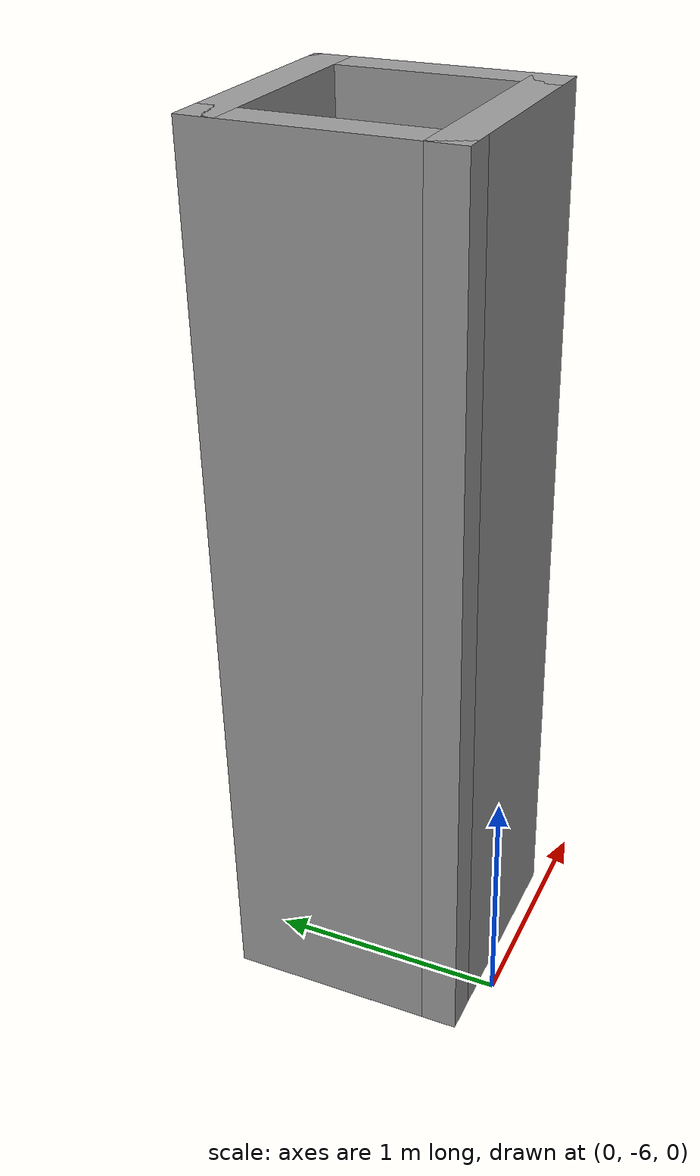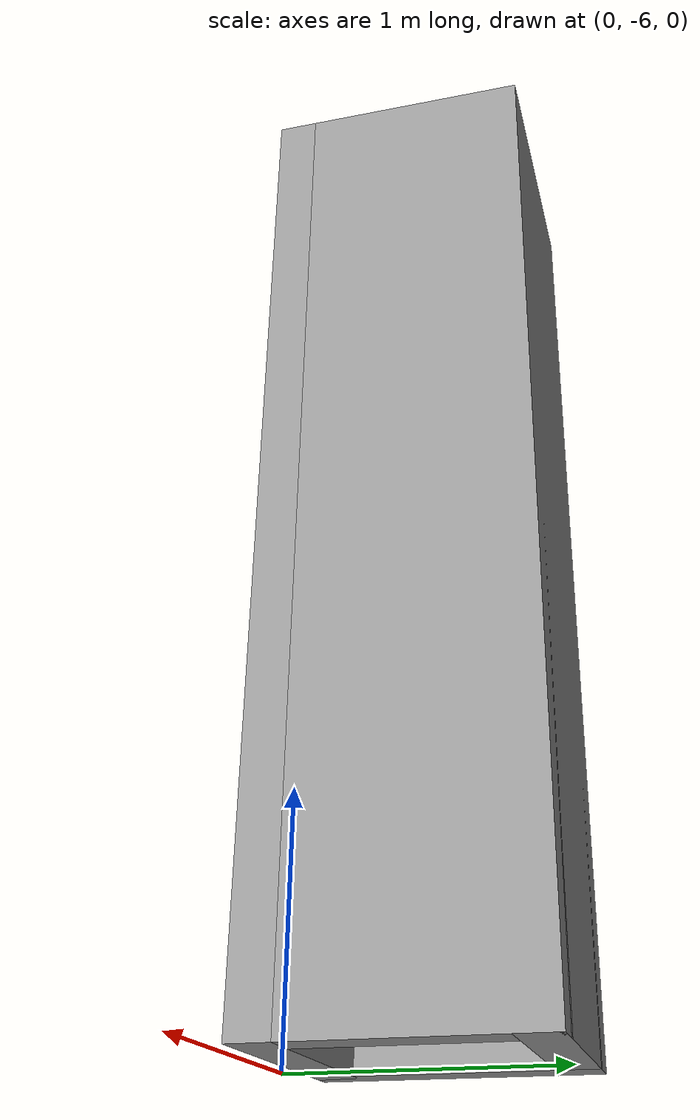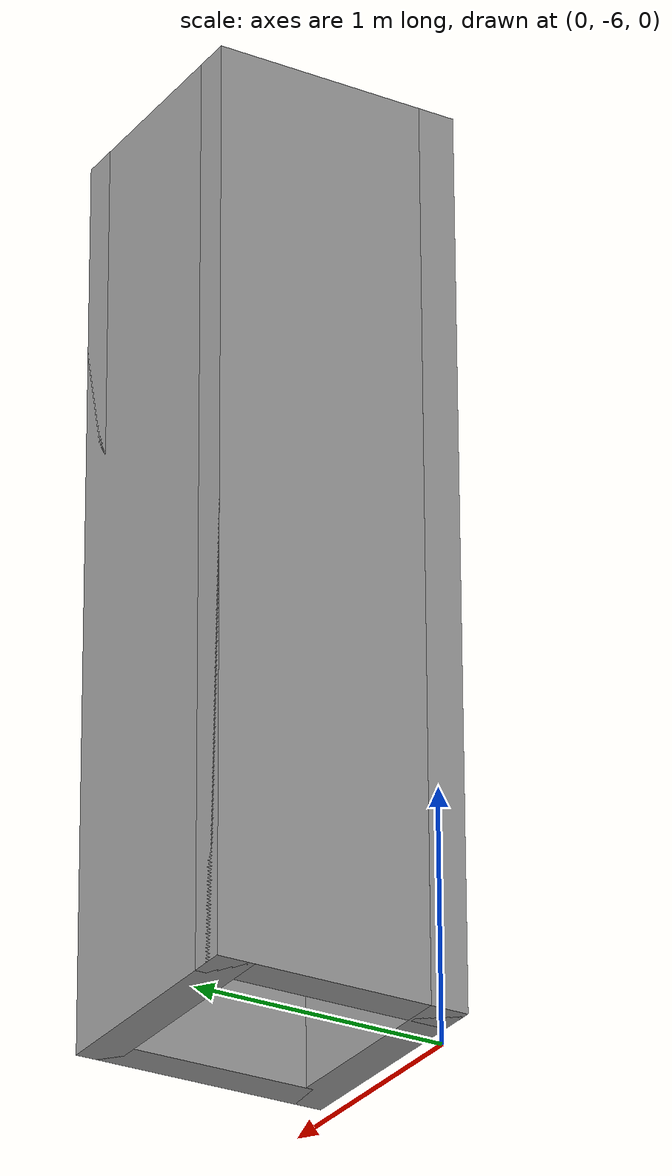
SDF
<?xml version='1.0'?>
<sdf version='1.6'>
  <model name='plant_column'>
    <pose frame=''>0.225 -5.435 0 0 -0 0</pose>
    <link name='Wall_0'>
      <collision name='Wall_0_Collision'>
        <geometry>
          <box>
            <size>1 0.15 3.65</size>
          </box>
        </geometry>
        <pose frame=''>0 0 1.825 0 -0 0</pose>
      </collision>
      <visual name='Wall_0_Visual'>
        <pose frame=''>0 0 1.825 0 -0 0</pose>
        <geometry>
          <box>
            <size>1 0.15 3.65</size>
          </box>
        </geometry>
        <material>
          <script>
            <uri>file://media/materials/scripts/gazebo.material</uri>
            <name>Gazebo/Grey</name>
          </script>
          <ambient>1 1 1 0.8</ambient>
          <diffuse>1 1 1 0.8</diffuse>
          <specular>0.01 0.01 0.01 0.8</specular>
          <emissive>0 0 0 0.8</emissive>
        </material>
        <meta>
          <layer>0</layer>
        </meta>
      </visual>
      <pose frame=''>0 0.425 0 0 -0 0</pose>
    </link>
    <link name='Wall_1'>
      <collision name='Wall_1_Collision'>
        <geometry>
          <box>
            <size>1 0.15 3.65</size>
          </box>
        </geometry>
        <pose frame=''>0 0 1.825 0 -0 0</pose>
      </collision>
      <visual name='Wall_1_Visual'>
        <pose frame=''>0 0 1.825 0 -0 0</pose>
        <geometry>
          <box>
            <size>1 0.15 3.65</size>
          </box>
        </geometry>
        <material>
          <script>
            <uri>file://media/materials/scripts/gazebo.material</uri>
            <name>Gazebo/Grey</name>
          </script>
          <ambient>1 1 1 0.8</ambient>
          <diffuse>1 1 1 0.8</diffuse>
          <specular>0.01 0.01 0.01 0.8</specular>
          <emissive>0 0 0 0.8</emissive>
        </material>
        <meta>
          <layer>0</layer>
        </meta>
      </visual>
      <pose frame=''>0.425 0 0 0 -0 -1.5708</pose>
    </link>
    <link name='Wall_2'>
      <collision name='Wall_2_Collision'>
        <geometry>
          <box>
            <size>1 0.15 3.65</size>
          </box>
        </geometry>
        <pose frame=''>0 0 1.825 0 -0 0</pose>
      </collision>
      <visual name='Wall_2_Visual'>
        <pose frame=''>0 0 1.825 0 -0 0</pose>
        <geometry>
          <box>
            <size>1 0.15 3.65</size>
          </box>
        </geometry>
        <material>
          <script>
            <uri>file://media/materials/scripts/gazebo.material</uri>
            <name>Gazebo/Grey</name>
          </script>
          <ambient>1 1 1 0.8</ambient>
          <diffuse>1 1 1 0.8</diffuse>
          <specular>0.01 0.01 0.01 0.8</specular>
          <emissive>0 0 0 0.8</emissive>
        </material>
        <meta>
          <layer>0</layer>
        </meta>
      </visual>
      <pose frame=''>0 -0.425 0 0 -0 3.14159</pose>
    </link>
    <link name='Wall_3'>
      <collision name='Wall_3_Collision'>
        <geometry>
          <box>
            <size>1 0.15 3.65</size>
          </box>
        </geometry>
        <pose frame=''>0 0 1.825 0 -0 0</pose>
      </collision>
      <visual name='Wall_3_Visual'>
        <pose frame=''>0 0 1.825 0 -0 0</pose>
        <geometry>
          <box>
            <size>1 0.15 3.65</size>
          </box>
        </geometry>
        <material>
          <script>
            <uri>file://media/materials/scripts/gazebo.material</uri>
            <name>Gazebo/Grey</name>
          </script>
          <ambient>1 1 1 0.8</ambient>
          <diffuse>1 1 1 0.8</diffuse>
          <specular>0.01 0.01 0.01 0.8</specular>
          <emissive>0 0 0 0.8</emissive>
        </material>
        <meta>
          <layer>0</layer>
        </meta>
      </visual>
      <pose frame=''>-0.425 0 0 0 -0 1.5708</pose>
    </link>
    <static>1</static>
  </model>
</sdf>
